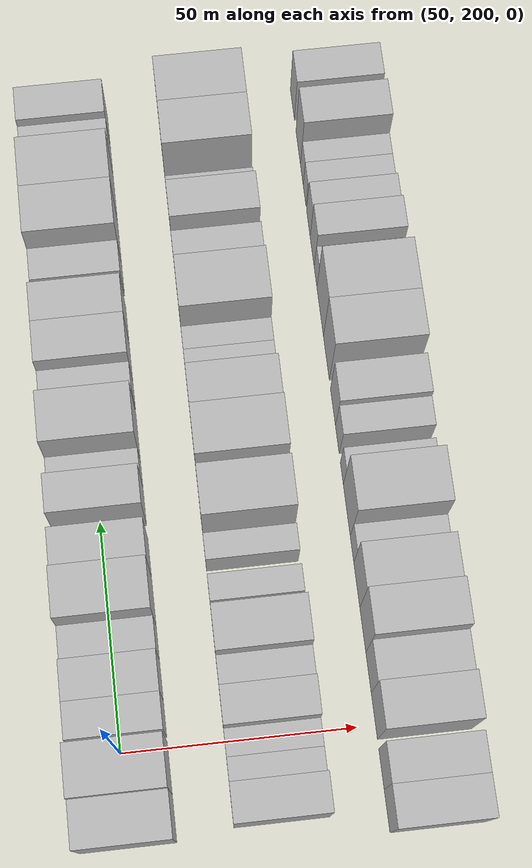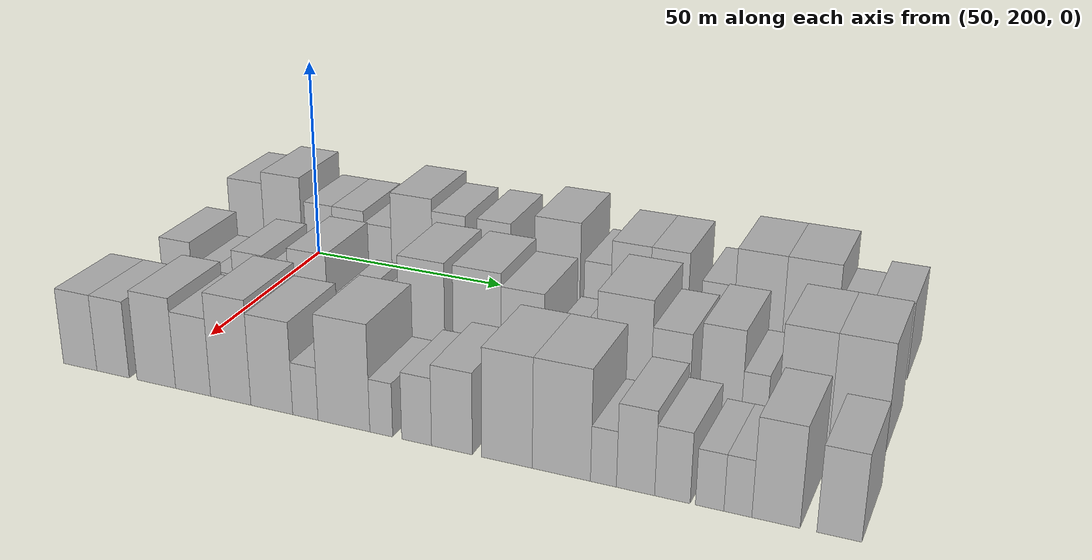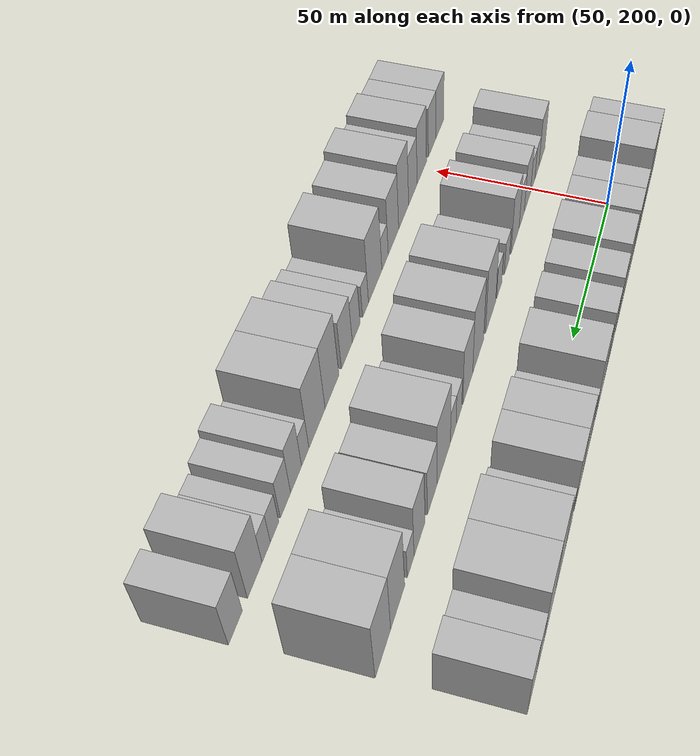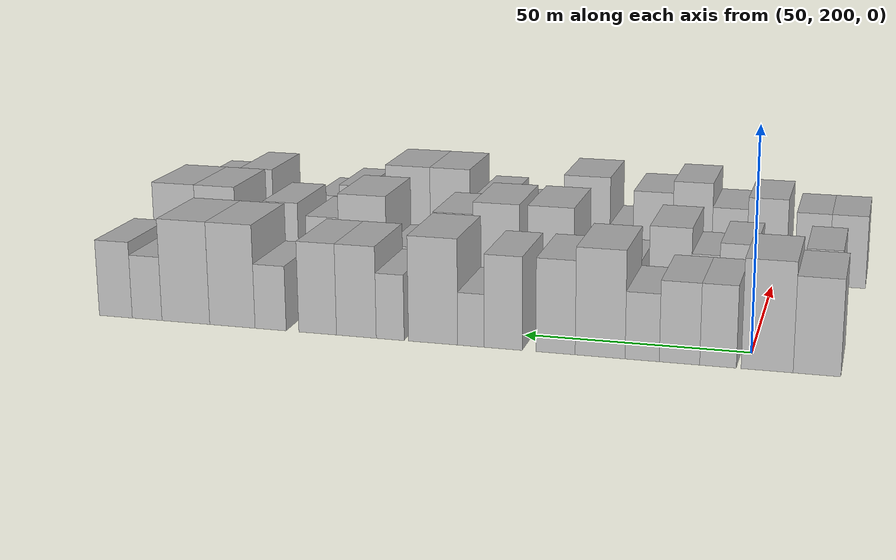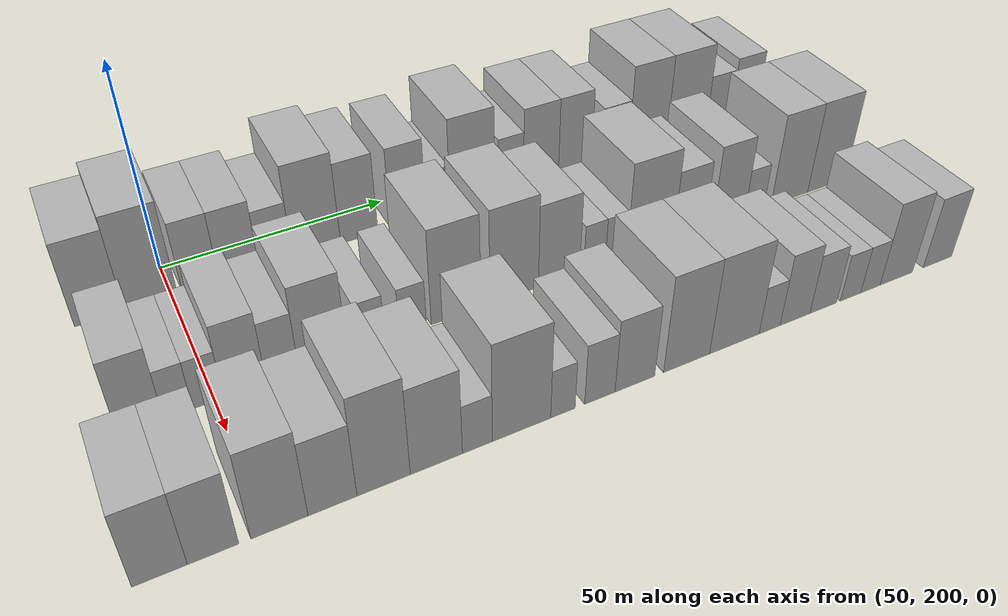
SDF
<sdf version="1.6">
 <world name="default">
  <model name="building_55">
   <static>1</static>
   <pose>50.0000 185.5899 0 0.000000 0.000000 0.000000</pose>
   <link name="link">
    <pose>0 0 10.50 0 0 0</pose>
    <collision name="collision"><geometry><box><size>20.0000 9.7330 21.0000</size></box></geometry></collision>
    <visual name="visual">
     <cast_shadows>0</cast_shadows>
     <geometry><box><size>20.0000 9.7330 21.0000</size></box></geometry>
     <material>
      <script>
       <uri>model://HANNAS_wall/materials/scripts</uri>
       <uri>model://HANNAS_wall/materials/textures</uri>
       <name>vrc/HANNAS_wall</name>
      </script>
     </material>
    </visual>
   </link>
  </model>
  <model name="building_56">
   <static>1</static>
   <pose>50.0000 195.8292 0 0.000000 0.000000 0.000000</pose>
   <link name="link">
    <pose>0 0 12.00 0 0 0</pose>
    <collision name="collision"><geometry><box><size>20.0000 10.7455 24.0000</size></box></geometry></collision>
    <visual name="visual">
     <cast_shadows>0</cast_shadows>
     <geometry><box><size>20.0000 10.7455 24.0000</size></box></geometry>
     <material>
      <script>
       <uri>model://HANNAS_wall/materials/scripts</uri>
       <uri>model://HANNAS_wall/materials/textures</uri>
       <name>vrc/HANNAS_wall</name>
      </script>
     </material>
    </visual>
   </link>
  </model>
  <model name="building_57">
   <static>1</static>
   <pose>50.0000 206.0392 0 0.000000 0.000000 0.000000</pose>
   <link name="link">
    <pose>0 0 9.00 0 0 0</pose>
    <collision name="collision"><geometry><box><size>20.0000 7.6745 18.0000</size></box></geometry></collision>
    <visual name="visual">
     <cast_shadows>0</cast_shadows>
     <geometry><box><size>20.0000 7.6745 18.0000</size></box></geometry>
     <material>
      <script>
       <uri>model://HANNAS_wall/materials/scripts</uri>
       <uri>model://HANNAS_wall/materials/textures</uri>
       <name>vrc/HANNAS_wall</name>
      </script>
     </material>
    </visual>
   </link>
  </model>
  <model name="building_58">
   <static>1</static>
   <pose>50.0000 214.1651 0 0.000000 0.000000 0.000000</pose>
   <link name="link">
    <pose>0 0 9.00 0 0 0</pose>
    <collision name="collision"><geometry><box><size>20.0000 8.5774 18.0000</size></box></geometry></collision>
    <visual name="visual">
     <cast_shadows>0</cast_shadows>
     <geometry><box><size>20.0000 8.5774 18.0000</size></box></geometry>
     <material>
      <script>
       <uri>model://HANNAS_wall/materials/scripts</uri>
       <uri>model://HANNAS_wall/materials/textures</uri>
       <name>vrc/HANNAS_wall</name>
      </script>
     </material>
    </visual>
   </link>
  </model>
  <model name="building_59">
   <static>1</static>
   <pose>50.0000 222.1161 0 0.000000 0.000000 0.000000</pose>
   <link name="link">
    <pose>0 0 7.50 0 0 0</pose>
    <collision name="collision"><geometry><box><size>20.0000 7.3245 15.0000</size></box></geometry></collision>
    <visual name="visual">
     <cast_shadows>0</cast_shadows>
     <geometry><box><size>20.0000 7.3245 15.0000</size></box></geometry>
     <material>
      <script>
       <uri>model://HANNAS_wall/materials/scripts</uri>
       <uri>model://HANNAS_wall/materials/textures</uri>
       <name>vrc/HANNAS_wall</name>
      </script>
     </material>
    </visual>
   </link>
  </model>
  <model name="building_60">
   <static>1</static>
   <pose>50.0000 231.1849 0 0.000000 0.000000 0.000000</pose>
   <link name="link">
    <pose>0 0 12.00 0 0 0</pose>
    <collision name="collision"><geometry><box><size>20.0000 10.8130 24.0000</size></box></geometry></collision>
    <visual name="visual">
     <cast_shadows>0</cast_shadows>
     <geometry><box><size>20.0000 10.8130 24.0000</size></box></geometry>
     <material>
      <script>
       <uri>model://HANNAS_wall/materials/scripts</uri>
       <uri>model://HANNAS_wall/materials/textures</uri>
       <name>vrc/HANNAS_wall</name>
      </script>
     </material>
    </visual>
   </link>
  </model>
  <model name="building_61">
   <static>1</static>
   <pose>50.0000 240.9119 0 0.000000 0.000000 0.000000</pose>
   <link name="link">
    <pose>0 0 10.50 0 0 0</pose>
    <collision name="collision"><geometry><box><size>20.0000 8.6410 21.0000</size></box></geometry></collision>
    <visual name="visual">
     <cast_shadows>0</cast_shadows>
     <geometry><box><size>20.0000 8.6410 21.0000</size></box></geometry>
     <material>
      <script>
       <uri>model://HANNAS_wall/materials/scripts</uri>
       <uri>model://HANNAS_wall/materials/textures</uri>
       <name>vrc/HANNAS_wall</name>
      </script>
     </material>
    </visual>
   </link>
  </model>
  <model name="building_62">
   <static>1</static>
   <pose>50.0000 252.4795 0 0.000000 0.000000 0.000000</pose>
   <link name="link">
    <pose>0 0 10.50 0 0 0</pose>
    <collision name="collision"><geometry><box><size>20.0000 8.4943 21.0000</size></box></geometry></collision>
    <visual name="visual">
     <cast_shadows>0</cast_shadows>
     <geometry><box><size>20.0000 8.4943 21.0000</size></box></geometry>
     <material>
      <script>
       <uri>model://HANNAS_wall/materials/scripts</uri>
       <uri>model://HANNAS_wall/materials/textures</uri>
       <name>vrc/HANNAS_wall</name>
      </script>
     </material>
    </visual>
   </link>
  </model>
  <model name="building_63">
   <static>1</static>
   <pose>50.0000 259.7101 0 0.000000 0.000000 0.000000</pose>
   <link name="link">
    <pose>0 0 6.00 0 0 0</pose>
    <collision name="collision"><geometry><box><size>20.0000 5.9669 12.0000</size></box></geometry></collision>
    <visual name="visual">
     <cast_shadows>0</cast_shadows>
     <geometry><box><size>20.0000 5.9669 12.0000</size></box></geometry>
     <material>
      <script>
       <uri>model://HANNAS_wall/materials/scripts</uri>
       <uri>model://HANNAS_wall/materials/textures</uri>
       <name>vrc/HANNAS_wall</name>
      </script>
     </material>
    </visual>
   </link>
  </model>
  <model name="building_64">
   <static>1</static>
   <pose>50.0000 268.2960 0 0.000000 0.000000 0.000000</pose>
   <link name="link">
    <pose>0 0 12.00 0 0 0</pose>
    <collision name="collision"><geometry><box><size>20.0000 11.2050 24.0000</size></box></geometry></collision>
    <visual name="visual">
     <cast_shadows>0</cast_shadows>
     <geometry><box><size>20.0000 11.2050 24.0000</size></box></geometry>
     <material>
      <script>
       <uri>model://HANNAS_wall/materials/scripts</uri>
       <uri>model://HANNAS_wall/materials/textures</uri>
       <name>vrc/HANNAS_wall</name>
      </script>
     </material>
    </visual>
   </link>
  </model>
  <model name="building_65">
   <static>1</static>
   <pose>50.0000 278.1197 0 0.000000 0.000000 0.000000</pose>
   <link name="link">
    <pose>0 0 7.50 0 0 0</pose>
    <collision name="collision"><geometry><box><size>20.0000 6.4425 15.0000</size></box></geometry></collision>
    <visual name="visual">
     <cast_shadows>0</cast_shadows>
     <geometry><box><size>20.0000 6.4425 15.0000</size></box></geometry>
     <material>
      <script>
       <uri>model://HANNAS_wall/materials/scripts</uri>
       <uri>model://HANNAS_wall/materials/textures</uri>
       <name>vrc/HANNAS_wall</name>
      </script>
     </material>
    </visual>
   </link>
  </model>
  <model name="building_66">
   <static>1</static>
   <pose>50.0000 285.9739 0 0.000000 0.000000 0.000000</pose>
   <link name="link">
    <pose>0 0 10.50 0 0 0</pose>
    <collision name="collision"><geometry><box><size>20.0000 9.2658 21.0000</size></box></geometry></collision>
    <visual name="visual">
     <cast_shadows>0</cast_shadows>
     <geometry><box><size>20.0000 9.2658 21.0000</size></box></geometry>
     <material>
      <script>
       <uri>model://HANNAS_wall/materials/scripts</uri>
       <uri>model://HANNAS_wall/materials/textures</uri>
       <name>vrc/HANNAS_wall</name>
      </script>
     </material>
    </visual>
   </link>
  </model>
  <model name="building_67">
   <static>1</static>
   <pose>50.0000 295.0466 0 0.000000 0.000000 0.000000</pose>
   <link name="link">
    <pose>0 0 10.50 0 0 0</pose>
    <collision name="collision"><geometry><box><size>20.0000 8.8795 21.0000</size></box></geometry></collision>
    <visual name="visual">
     <cast_shadows>0</cast_shadows>
     <geometry><box><size>20.0000 8.8795 21.0000</size></box></geometry>
     <material>
      <script>
       <uri>model://HANNAS_wall/materials/scripts</uri>
       <uri>model://HANNAS_wall/materials/textures</uri>
       <name>vrc/HANNAS_wall</name>
      </script>
     </material>
    </visual>
   </link>
  </model>
  <model name="building_68">
   <static>1</static>
   <pose>50.0000 306.2143 0 0.000000 0.000000 0.000000</pose>
   <link name="link">
    <pose>0 0 7.50 0 0 0</pose>
    <collision name="collision"><geometry><box><size>20.0000 7.4558 15.0000</size></box></geometry></collision>
    <visual name="visual">
     <cast_shadows>0</cast_shadows>
     <geometry><box><size>20.0000 7.4558 15.0000</size></box></geometry>
     <material>
      <script>
       <uri>model://HANNAS_wall/materials/scripts</uri>
       <uri>model://HANNAS_wall/materials/textures</uri>
       <name>vrc/HANNAS_wall</name>
      </script>
     </material>
    </visual>
   </link>
  </model>
  <model name="building_69">
   <static>1</static>
   <pose>50.0000 315.4350 0 0.000000 0.000000 0.000000</pose>
   <link name="link">
    <pose>0 0 12.00 0 0 0</pose>
    <collision name="collision"><geometry><box><size>20.0000 10.9856 24.0000</size></box></geometry></collision>
    <visual name="visual">
     <cast_shadows>0</cast_shadows>
     <geometry><box><size>20.0000 10.9856 24.0000</size></box></geometry>
     <material>
      <script>
       <uri>model://HANNAS_wall/materials/scripts</uri>
       <uri>model://HANNAS_wall/materials/textures</uri>
       <name>vrc/HANNAS_wall</name>
      </script>
     </material>
    </visual>
   </link>
  </model>
  <model name="building_70">
   <static>1</static>
   <pose>50.0000 326.7937 0 0.000000 0.000000 0.000000</pose>
   <link name="link">
    <pose>0 0 12.00 0 0 0</pose>
    <collision name="collision"><geometry><box><size>20.0000 11.7317 24.0000</size></box></geometry></collision>
    <visual name="visual">
     <cast_shadows>0</cast_shadows>
     <geometry><box><size>20.0000 11.7317 24.0000</size></box></geometry>
     <material>
      <script>
       <uri>model://HANNAS_wall/materials/scripts</uri>
       <uri>model://HANNAS_wall/materials/textures</uri>
       <name>vrc/HANNAS_wall</name>
      </script>
     </material>
    </visual>
   </link>
  </model>
  <model name="building_71">
   <static>1</static>
   <pose>50.0000 336.3459 0 0.000000 0.000000 0.000000</pose>
   <link name="link">
    <pose>0 0 7.50 0 0 0</pose>
    <collision name="collision"><geometry><box><size>20.0000 7.3728 15.0000</size></box></geometry></collision>
    <visual name="visual">
     <cast_shadows>0</cast_shadows>
     <geometry><box><size>20.0000 7.3728 15.0000</size></box></geometry>
     <material>
      <script>
       <uri>model://HANNAS_wall/materials/scripts</uri>
       <uri>model://HANNAS_wall/materials/textures</uri>
       <name>vrc/HANNAS_wall</name>
      </script>
     </material>
    </visual>
   </link>
  </model>
  <model name="building_72">
   <static>1</static>
   <pose>50.0000 344.1592 0 0.000000 0.000000 0.000000</pose>
   <link name="link">
    <pose>0 0 9.00 0 0 0</pose>
    <collision name="collision"><geometry><box><size>20.0000 8.2536 18.0000</size></box></geometry></collision>
    <visual name="visual">
     <cast_shadows>0</cast_shadows>
     <geometry><box><size>20.0000 8.2536 18.0000</size></box></geometry>
     <material>
      <script>
       <uri>model://HANNAS_wall/materials/scripts</uri>
       <uri>model://HANNAS_wall/materials/textures</uri>
       <name>vrc/HANNAS_wall</name>
      </script>
     </material>
    </visual>
   </link>
  </model>
  <model name="building_132">
   <static>1</static>
   <pose>82.0000 186.4900 0 0.000000 0.000000 0.000000</pose>
   <link name="link">
    <pose>0 0 9.00 0 0 0</pose>
    <collision name="collision"><geometry><box><size>20.0000 8.2095 18.0000</size></box></geometry></collision>
    <visual name="visual">
     <cast_shadows>0</cast_shadows>
     <geometry><box><size>20.0000 8.2095 18.0000</size></box></geometry>
     <material>
      <script>
       <uri>model://HANNAS_wall/materials/scripts</uri>
       <uri>model://HANNAS_wall/materials/textures</uri>
       <name>vrc/HANNAS_wall</name>
      </script>
     </material>
    </visual>
   </link>
  </model>
  <model name="building_133">
   <static>1</static>
   <pose>82.0000 193.2410 0 0.000000 0.000000 0.000000</pose>
   <link name="link">
    <pose>0 0 6.00 0 0 0</pose>
    <collision name="collision"><geometry><box><size>20.0000 5.2927 12.0000</size></box></geometry></collision>
    <visual name="visual">
     <cast_shadows>0</cast_shadows>
     <geometry><box><size>20.0000 5.2927 12.0000</size></box></geometry>
     <material>
      <script>
       <uri>model://HANNAS_wall/materials/scripts</uri>
       <uri>model://HANNAS_wall/materials/textures</uri>
       <name>vrc/HANNAS_wall</name>
      </script>
     </material>
    </visual>
   </link>
  </model>
  <model name="building_134">
   <static>1</static>
   <pose>82.0000 198.7745 0 0.000000 0.000000 0.000000</pose>
   <link name="link">
    <pose>0 0 6.00 0 0 0</pose>
    <collision name="collision"><geometry><box><size>20.0000 5.7743 12.0000</size></box></geometry></collision>
    <visual name="visual">
     <cast_shadows>0</cast_shadows>
     <geometry><box><size>20.0000 5.7743 12.0000</size></box></geometry>
     <material>
      <script>
       <uri>model://HANNAS_wall/materials/scripts</uri>
       <uri>model://HANNAS_wall/materials/textures</uri>
       <name>vrc/HANNAS_wall</name>
      </script>
     </material>
    </visual>
   </link>
  </model>
  <model name="building_135">
   <static>1</static>
   <pose>82.0000 205.7223 0 0.000000 0.000000 0.000000</pose>
   <link name="link">
    <pose>0 0 9.00 0 0 0</pose>
    <collision name="collision"><geometry><box><size>20.0000 8.1212 18.0000</size></box></geometry></collision>
    <visual name="visual">
     <cast_shadows>0</cast_shadows>
     <geometry><box><size>20.0000 8.1212 18.0000</size></box></geometry>
     <material>
      <script>
       <uri>model://HANNAS_wall/materials/scripts</uri>
       <uri>model://HANNAS_wall/materials/textures</uri>
       <name>vrc/HANNAS_wall</name>
      </script>
     </material>
    </visual>
   </link>
  </model>
  <model name="building_136">
   <static>1</static>
   <pose>82.0000 212.9871 0 0.000000 0.000000 0.000000</pose>
   <link name="link">
    <pose>0 0 7.50 0 0 0</pose>
    <collision name="collision"><geometry><box><size>20.0000 6.4084 15.0000</size></box></geometry></collision>
    <visual name="visual">
     <cast_shadows>0</cast_shadows>
     <geometry><box><size>20.0000 6.4084 15.0000</size></box></geometry>
     <material>
      <script>
       <uri>model://HANNAS_wall/materials/scripts</uri>
       <uri>model://HANNAS_wall/materials/textures</uri>
       <name>vrc/HANNAS_wall</name>
      </script>
     </material>
    </visual>
   </link>
  </model>
  <model name="building_137">
   <static>1</static>
   <pose>82.0000 221.0677 0 0.000000 0.000000 0.000000</pose>
   <link name="link">
    <pose>0 0 10.50 0 0 0</pose>
    <collision name="collision"><geometry><box><size>20.0000 9.7528 21.0000</size></box></geometry></collision>
    <visual name="visual">
     <cast_shadows>0</cast_shadows>
     <geometry><box><size>20.0000 9.7528 21.0000</size></box></geometry>
     <material>
      <script>
       <uri>model://HANNAS_wall/materials/scripts</uri>
       <uri>model://HANNAS_wall/materials/textures</uri>
       <name>vrc/HANNAS_wall</name>
      </script>
     </material>
    </visual>
   </link>
  </model>
  <model name="building_138">
   <static>1</static>
   <pose>82.0000 230.8411 0 0.000000 0.000000 0.000000</pose>
   <link name="link">
    <pose>0 0 6.00 0 0 0</pose>
    <collision name="collision"><geometry><box><size>20.0000 5.7941 12.0000</size></box></geometry></collision>
    <visual name="visual">
     <cast_shadows>0</cast_shadows>
     <geometry><box><size>20.0000 5.7941 12.0000</size></box></geometry>
     <material>
      <script>
       <uri>model://HANNAS_wall/materials/scripts</uri>
       <uri>model://HANNAS_wall/materials/textures</uri>
       <name>vrc/HANNAS_wall</name>
      </script>
     </material>
    </visual>
   </link>
  </model>
  <model name="building_139">
   <static>1</static>
   <pose>82.0000 239.6468 0 0.000000 0.000000 0.000000</pose>
   <link name="link">
    <pose>0 0 6.00 0 0 0</pose>
    <collision name="collision"><geometry><box><size>20.0000 5.8172 12.0000</size></box></geometry></collision>
    <visual name="visual">
     <cast_shadows>0</cast_shadows>
     <geometry><box><size>20.0000 5.8172 12.0000</size></box></geometry>
     <material>
      <script>
       <uri>model://HANNAS_wall/materials/scripts</uri>
       <uri>model://HANNAS_wall/materials/textures</uri>
       <name>vrc/HANNAS_wall</name>
      </script>
     </material>
    </visual>
   </link>
  </model>
  <model name="building_140">
   <static>1</static>
   <pose>82.0000 249.0661 0 0.000000 0.000000 0.000000</pose>
   <link name="link">
    <pose>0 0 12.00 0 0 0</pose>
    <collision name="collision"><geometry><box><size>20.0000 11.0216 24.0000</size></box></geometry></collision>
    <visual name="visual">
     <cast_shadows>0</cast_shadows>
     <geometry><box><size>20.0000 11.0216 24.0000</size></box></geometry>
     <material>
      <script>
       <uri>model://HANNAS_wall/materials/scripts</uri>
       <uri>model://HANNAS_wall/materials/textures</uri>
       <name>vrc/HANNAS_wall</name>
      </script>
     </material>
    </visual>
   </link>
  </model>
  <model name="building_141">
   <static>1</static>
   <pose>82.0000 262.1649 0 0.000000 0.000000 0.000000</pose>
   <link name="link">
    <pose>0 0 12.00 0 0 0</pose>
    <collision name="collision"><geometry><box><size>20.0000 11.1759 24.0000</size></box></geometry></collision>
    <visual name="visual">
     <cast_shadows>0</cast_shadows>
     <geometry><box><size>20.0000 11.1759 24.0000</size></box></geometry>
     <material>
      <script>
       <uri>model://HANNAS_wall/materials/scripts</uri>
       <uri>model://HANNAS_wall/materials/textures</uri>
       <name>vrc/HANNAS_wall</name>
      </script>
     </material>
    </visual>
   </link>
  </model>
  <model name="building_142">
   <static>1</static>
   <pose>82.0000 272.6546 0 0.000000 0.000000 0.000000</pose>
   <link name="link">
    <pose>0 0 10.50 0 0 0</pose>
    <collision name="collision"><geometry><box><size>20.0000 9.8037 21.0000</size></box></geometry></collision>
    <visual name="visual">
     <cast_shadows>0</cast_shadows>
     <geometry><box><size>20.0000 9.8037 21.0000</size></box></geometry>
     <material>
      <script>
       <uri>model://HANNAS_wall/materials/scripts</uri>
       <uri>model://HANNAS_wall/materials/textures</uri>
       <name>vrc/HANNAS_wall</name>
      </script>
     </material>
    </visual>
   </link>
  </model>
  <model name="building_143">
   <static>1</static>
   <pose>82.0000 281.2016 0 0.000000 0.000000 0.000000</pose>
   <link name="link">
    <pose>0 0 6.00 0 0 0</pose>
    <collision name="collision"><geometry><box><size>20.0000 5.2903 12.0000</size></box></geometry></collision>
    <visual name="visual">
     <cast_shadows>0</cast_shadows>
     <geometry><box><size>20.0000 5.2903 12.0000</size></box></geometry>
     <material>
      <script>
       <uri>model://HANNAS_wall/materials/scripts</uri>
       <uri>model://HANNAS_wall/materials/textures</uri>
       <name>vrc/HANNAS_wall</name>
      </script>
     </material>
    </visual>
   </link>
  </model>
  <model name="building_144">
   <static>1</static>
   <pose>82.0000 286.5166 0 0.000000 0.000000 0.000000</pose>
   <link name="link">
    <pose>0 0 6.00 0 0 0</pose>
    <collision name="collision"><geometry><box><size>20.0000 5.3397 12.0000</size></box></geometry></collision>
    <visual name="visual">
     <cast_shadows>0</cast_shadows>
     <geometry><box><size>20.0000 5.3397 12.0000</size></box></geometry>
     <material>
      <script>
       <uri>model://HANNAS_wall/materials/scripts</uri>
       <uri>model://HANNAS_wall/materials/textures</uri>
       <name>vrc/HANNAS_wall</name>
      </script>
     </material>
    </visual>
   </link>
  </model>
  <model name="building_145">
   <static>1</static>
   <pose>82.0000 295.1687 0 0.000000 0.000000 0.000000</pose>
   <link name="link">
    <pose>0 0 12.00 0 0 0</pose>
    <collision name="collision"><geometry><box><size>20.0000 11.9644 24.0000</size></box></geometry></collision>
    <visual name="visual">
     <cast_shadows>0</cast_shadows>
     <geometry><box><size>20.0000 11.9644 24.0000</size></box></geometry>
     <material>
      <script>
       <uri>model://HANNAS_wall/materials/scripts</uri>
       <uri>model://HANNAS_wall/materials/textures</uri>
       <name>vrc/HANNAS_wall</name>
      </script>
     </material>
    </visual>
   </link>
  </model>
  <model name="building_146">
   <static>1</static>
   <pose>82.0000 305.3012 0 0.000000 0.000000 0.000000</pose>
   <link name="link">
    <pose>0 0 9.00 0 0 0</pose>
    <collision name="collision"><geometry><box><size>20.0000 8.3006 18.0000</size></box></geometry></collision>
    <visual name="visual">
     <cast_shadows>0</cast_shadows>
     <geometry><box><size>20.0000 8.3006 18.0000</size></box></geometry>
     <material>
      <script>
       <uri>model://HANNAS_wall/materials/scripts</uri>
       <uri>model://HANNAS_wall/materials/textures</uri>
       <name>vrc/HANNAS_wall</name>
      </script>
     </material>
    </visual>
   </link>
  </model>
  <model name="building_147">
   <static>1</static>
   <pose>82.0000 315.8851 0 0.000000 0.000000 0.000000</pose>
   <link name="link">
    <pose>0 0 10.50 0 0 0</pose>
    <collision name="collision"><geometry><box><size>20.0000 8.8671 21.0000</size></box></geometry></collision>
    <visual name="visual">
     <cast_shadows>0</cast_shadows>
     <geometry><box><size>20.0000 8.8671 21.0000</size></box></geometry>
     <material>
      <script>
       <uri>model://HANNAS_wall/materials/scripts</uri>
       <uri>model://HANNAS_wall/materials/textures</uri>
       <name>vrc/HANNAS_wall</name>
      </script>
     </material>
    </visual>
   </link>
  </model>
  <model name="building_148">
   <static>1</static>
   <pose>82.0000 322.9834 0 0.000000 0.000000 0.000000</pose>
   <link name="link">
    <pose>0 0 6.00 0 0 0</pose>
    <collision name="collision"><geometry><box><size>20.0000 5.3293 12.0000</size></box></geometry></collision>
    <visual name="visual">
     <cast_shadows>0</cast_shadows>
     <geometry><box><size>20.0000 5.3293 12.0000</size></box></geometry>
     <material>
      <script>
       <uri>model://HANNAS_wall/materials/scripts</uri>
       <uri>model://HANNAS_wall/materials/textures</uri>
       <name>vrc/HANNAS_wall</name>
      </script>
     </material>
    </visual>
   </link>
  </model>
  <model name="building_149">
   <static>1</static>
   <pose>82.0000 332.9138 0 0.000000 0.000000 0.000000</pose>
   <link name="link">
    <pose>0 0 12.00 0 0 0</pose>
    <collision name="collision"><geometry><box><size>20.0000 10.5316 24.0000</size></box></geometry></collision>
    <visual name="visual">
     <cast_shadows>0</cast_shadows>
     <geometry><box><size>20.0000 10.5316 24.0000</size></box></geometry>
     <material>
      <script>
       <uri>model://HANNAS_wall/materials/scripts</uri>
       <uri>model://HANNAS_wall/materials/textures</uri>
       <name>vrc/HANNAS_wall</name>
      </script>
     </material>
    </visual>
   </link>
  </model>
  <model name="building_150">
   <static>1</static>
   <pose>82.0000 343.7231 0 0.000000 0.000000 0.000000</pose>
   <link name="link">
    <pose>0 0 12.00 0 0 0</pose>
    <collision name="collision"><geometry><box><size>20.0000 11.0872 24.0000</size></box></geometry></collision>
    <visual name="visual">
     <cast_shadows>0</cast_shadows>
     <geometry><box><size>20.0000 11.0872 24.0000</size></box></geometry>
     <material>
      <script>
       <uri>model://HANNAS_wall/materials/scripts</uri>
       <uri>model://HANNAS_wall/materials/textures</uri>
       <name>vrc/HANNAS_wall</name>
      </script>
     </material>
    </visual>
   </link>
  </model>
  <model name="building_211">
   <static>1</static>
   <pose>114.0000 182.2559 0 0.000000 0.000000 0.000000</pose>
   <link name="link">
    <pose>0 0 9.00 0 0 0</pose>
    <collision name="collision"><geometry><box><size>20.0000 8.7632 18.0000</size></box></geometry></collision>
    <visual name="visual">
     <cast_shadows>0</cast_shadows>
     <geometry><box><size>20.0000 8.7632 18.0000</size></box></geometry>
     <material>
      <script>
       <uri>model://HANNAS_wall/materials/scripts</uri>
       <uri>model://HANNAS_wall/materials/textures</uri>
       <name>vrc/HANNAS_wall</name>
      </script>
     </material>
    </visual>
   </link>
  </model>
  <model name="building_212">
   <static>1</static>
   <pose>114.0000 190.8251 0 0.000000 0.000000 0.000000</pose>
   <link name="link">
    <pose>0 0 9.00 0 0 0</pose>
    <collision name="collision"><geometry><box><size>20.0000 8.3752 18.0000</size></box></geometry></collision>
    <visual name="visual">
     <cast_shadows>0</cast_shadows>
     <geometry><box><size>20.0000 8.3752 18.0000</size></box></geometry>
     <material>
      <script>
       <uri>model://HANNAS_wall/materials/scripts</uri>
       <uri>model://HANNAS_wall/materials/textures</uri>
       <name>vrc/HANNAS_wall</name>
      </script>
     </material>
    </visual>
   </link>
  </model>
  <model name="building_213">
   <static>1</static>
   <pose>114.0000 201.8825 0 0.000000 0.000000 0.000000</pose>
   <link name="link">
    <pose>0 0 10.50 0 0 0</pose>
    <collision name="collision"><geometry><box><size>20.0000 9.7396 21.0000</size></box></geometry></collision>
    <visual name="visual">
     <cast_shadows>0</cast_shadows>
     <geometry><box><size>20.0000 9.7396 21.0000</size></box></geometry>
     <material>
      <script>
       <uri>model://HANNAS_wall/materials/scripts</uri>
       <uri>model://HANNAS_wall/materials/textures</uri>
       <name>vrc/HANNAS_wall</name>
      </script>
     </material>
    </visual>
   </link>
  </model>
  <model name="building_214">
   <static>1</static>
   <pose>114.0000 211.0773 0 0.000000 0.000000 0.000000</pose>
   <link name="link">
    <pose>0 0 9.00 0 0 0</pose>
    <collision name="collision"><geometry><box><size>20.0000 8.6499 18.0000</size></box></geometry></collision>
    <visual name="visual">
     <cast_shadows>0</cast_shadows>
     <geometry><box><size>20.0000 8.6499 18.0000</size></box></geometry>
     <material>
      <script>
       <uri>model://HANNAS_wall/materials/scripts</uri>
       <uri>model://HANNAS_wall/materials/textures</uri>
       <name>vrc/HANNAS_wall</name>
      </script>
     </material>
    </visual>
   </link>
  </model>
  <model name="building_215">
   <static>1</static>
   <pose>114.0000 220.2819 0 0.000000 0.000000 0.000000</pose>
   <link name="link">
    <pose>0 0 12.00 0 0 0</pose>
    <collision name="collision"><geometry><box><size>20.0000 9.7593 24.0000</size></box></geometry></collision>
    <visual name="visual">
     <cast_shadows>0</cast_shadows>
     <geometry><box><size>20.0000 9.7593 24.0000</size></box></geometry>
     <material>
      <script>
       <uri>model://HANNAS_wall/materials/scripts</uri>
       <uri>model://HANNAS_wall/materials/textures</uri>
       <name>vrc/HANNAS_wall</name>
      </script>
     </material>
    </visual>
   </link>
  </model>
  <model name="building_216">
   <static>1</static>
   <pose>114.0000 230.1142 0 0.000000 0.000000 0.000000</pose>
   <link name="link">
    <pose>0 0 10.50 0 0 0</pose>
    <collision name="collision"><geometry><box><size>20.0000 9.9053 21.0000</size></box></geometry></collision>
    <visual name="visual">
     <cast_shadows>0</cast_shadows>
     <geometry><box><size>20.0000 9.9053 21.0000</size></box></geometry>
     <material>
      <script>
       <uri>model://HANNAS_wall/materials/scripts</uri>
       <uri>model://HANNAS_wall/materials/textures</uri>
       <name>vrc/HANNAS_wall</name>
      </script>
     </material>
    </visual>
   </link>
  </model>
  <model name="building_217">
   <static>1</static>
   <pose>114.0000 238.0025 0 0.000000 0.000000 0.000000</pose>
   <link name="link">
    <pose>0 0 6.00 0 0 0</pose>
    <collision name="collision"><geometry><box><size>20.0000 5.8713 12.0000</size></box></geometry></collision>
    <visual name="visual">
     <cast_shadows>0</cast_shadows>
     <geometry><box><size>20.0000 5.8713 12.0000</size></box></geometry>
     <material>
      <script>
       <uri>model://HANNAS_wall/materials/scripts</uri>
       <uri>model://HANNAS_wall/materials/textures</uri>
       <name>vrc/HANNAS_wall</name>
      </script>
     </material>
    </visual>
   </link>
  </model>
  <model name="building_218">
   <static>1</static>
   <pose>114.0000 246.8451 0 0.000000 0.000000 0.000000</pose>
   <link name="link">
    <pose>0 0 12.00 0 0 0</pose>
    <collision name="collision"><geometry><box><size>20.0000 11.8139 24.0000</size></box></geometry></collision>
    <visual name="visual">
     <cast_shadows>0</cast_shadows>
     <geometry><box><size>20.0000 11.8139 24.0000</size></box></geometry>
     <material>
      <script>
       <uri>model://HANNAS_wall/materials/scripts</uri>
       <uri>model://HANNAS_wall/materials/textures</uri>
       <name>vrc/HANNAS_wall</name>
      </script>
     </material>
    </visual>
   </link>
  </model>
  <model name="building_219">
   <static>1</static>
   <pose>114.0000 255.3041 0 0.000000 0.000000 0.000000</pose>
   <link name="link">
    <pose>0 0 6.00 0 0 0</pose>
    <collision name="collision"><geometry><box><size>20.0000 5.1041 12.0000</size></box></geometry></collision>
    <visual name="visual">
     <cast_shadows>0</cast_shadows>
     <geometry><box><size>20.0000 5.1041 12.0000</size></box></geometry>
     <material>
      <script>
       <uri>model://HANNAS_wall/materials/scripts</uri>
       <uri>model://HANNAS_wall/materials/textures</uri>
       <name>vrc/HANNAS_wall</name>
      </script>
     </material>
    </visual>
   </link>
  </model>
  <model name="building_220">
   <static>1</static>
   <pose>114.0000 263.1260 0 0.000000 0.000000 0.000000</pose>
   <link name="link">
    <pose>0 0 7.50 0 0 0</pose>
    <collision name="collision"><geometry><box><size>20.0000 6.5396 15.0000</size></box></geometry></collision>
    <visual name="visual">
     <cast_shadows>0</cast_shadows>
     <geometry><box><size>20.0000 6.5396 15.0000</size></box></geometry>
     <material>
      <script>
       <uri>model://HANNAS_wall/materials/scripts</uri>
       <uri>model://HANNAS_wall/materials/textures</uri>
       <name>vrc/HANNAS_wall</name>
      </script>
     </material>
    </visual>
   </link>
  </model>
  <model name="building_221">
   <static>1</static>
   <pose>114.0000 270.7775 0 0.000000 0.000000 0.000000</pose>
   <link name="link">
    <pose>0 0 9.00 0 0 0</pose>
    <collision name="collision"><geometry><box><size>20.0000 8.7636 18.0000</size></box></geometry></collision>
    <visual name="visual">
     <cast_shadows>0</cast_shadows>
     <geometry><box><size>20.0000 8.7636 18.0000</size></box></geometry>
     <material>
      <script>
       <uri>model://HANNAS_wall/materials/scripts</uri>
       <uri>model://HANNAS_wall/materials/textures</uri>
       <name>vrc/HANNAS_wall</name>
      </script>
     </material>
    </visual>
   </link>
  </model>
  <model name="building_222">
   <static>1</static>
   <pose>114.0000 282.4480 0 0.000000 0.000000 0.000000</pose>
   <link name="link">
    <pose>0 0 12.00 0 0 0</pose>
    <collision name="collision"><geometry><box><size>20.0000 10.5774 24.0000</size></box></geometry></collision>
    <visual name="visual">
     <cast_shadows>0</cast_shadows>
     <geometry><box><size>20.0000 10.5774 24.0000</size></box></geometry>
     <material>
      <script>
       <uri>model://HANNAS_wall/materials/scripts</uri>
       <uri>model://HANNAS_wall/materials/textures</uri>
       <name>vrc/HANNAS_wall</name>
      </script>
     </material>
    </visual>
   </link>
  </model>
  <model name="building_223">
   <static>1</static>
   <pose>114.0000 293.6630 0 0.000000 0.000000 0.000000</pose>
   <link name="link">
    <pose>0 0 12.00 0 0 0</pose>
    <collision name="collision"><geometry><box><size>20.0000 11.8526 24.0000</size></box></geometry></collision>
    <visual name="visual">
     <cast_shadows>0</cast_shadows>
     <geometry><box><size>20.0000 11.8526 24.0000</size></box></geometry>
     <material>
      <script>
       <uri>model://HANNAS_wall/materials/scripts</uri>
       <uri>model://HANNAS_wall/materials/textures</uri>
       <name>vrc/HANNAS_wall</name>
      </script>
     </material>
    </visual>
   </link>
  </model>
  <model name="building_224">
   <static>1</static>
   <pose>114.0000 302.1726 0 0.000000 0.000000 0.000000</pose>
   <link name="link">
    <pose>0 0 6.00 0 0 0</pose>
    <collision name="collision"><geometry><box><size>20.0000 5.1666 12.0000</size></box></geometry></collision>
    <visual name="visual">
     <cast_shadows>0</cast_shadows>
     <geometry><box><size>20.0000 5.1666 12.0000</size></box></geometry>
     <material>
      <script>
       <uri>model://HANNAS_wall/materials/scripts</uri>
       <uri>model://HANNAS_wall/materials/textures</uri>
       <name>vrc/HANNAS_wall</name>
      </script>
     </material>
    </visual>
   </link>
  </model>
  <model name="building_225">
   <static>1</static>
   <pose>114.0000 308.5087 0 0.000000 0.000000 0.000000</pose>
   <link name="link">
    <pose>0 0 9.00 0 0 0</pose>
    <collision name="collision"><geometry><box><size>20.0000 7.5056 18.0000</size></box></geometry></collision>
    <visual name="visual">
     <cast_shadows>0</cast_shadows>
     <geometry><box><size>20.0000 7.5056 18.0000</size></box></geometry>
     <material>
      <script>
       <uri>model://HANNAS_wall/materials/scripts</uri>
       <uri>model://HANNAS_wall/materials/textures</uri>
       <name>vrc/HANNAS_wall</name>
      </script>
     </material>
    </visual>
   </link>
  </model>
  <model name="building_226">
   <static>1</static>
   <pose>114.0000 315.6885 0 0.000000 0.000000 0.000000</pose>
   <link name="link">
    <pose>0 0 7.50 0 0 0</pose>
    <collision name="collision"><geometry><box><size>20.0000 6.8538 15.0000</size></box></geometry></collision>
    <visual name="visual">
     <cast_shadows>0</cast_shadows>
     <geometry><box><size>20.0000 6.8538 15.0000</size></box></geometry>
     <material>
      <script>
       <uri>model://HANNAS_wall/materials/scripts</uri>
       <uri>model://HANNAS_wall/materials/textures</uri>
       <name>vrc/HANNAS_wall</name>
      </script>
     </material>
    </visual>
   </link>
  </model>
  <model name="building_227">
   <static>1</static>
   <pose>114.0000 322.8114 0 0.000000 0.000000 0.000000</pose>
   <link name="link">
    <pose>0 0 6.00 0 0 0</pose>
    <collision name="collision"><geometry><box><size>20.0000 5.3921 12.0000</size></box></geometry></collision>
    <visual name="visual">
     <cast_shadows>0</cast_shadows>
     <geometry><box><size>20.0000 5.3921 12.0000</size></box></geometry>
     <material>
      <script>
       <uri>model://HANNAS_wall/materials/scripts</uri>
       <uri>model://HANNAS_wall/materials/textures</uri>
       <name>vrc/HANNAS_wall</name>
      </script>
     </material>
    </visual>
   </link>
  </model>
  <model name="building_228">
   <static>1</static>
   <pose>114.0000 328.1126 0 0.000000 0.000000 0.000000</pose>
   <link name="link">
    <pose>0 0 6.00 0 0 0</pose>
    <collision name="collision"><geometry><box><size>20.0000 5.2102 12.0000</size></box></geometry></collision>
    <visual name="visual">
     <cast_shadows>0</cast_shadows>
     <geometry><box><size>20.0000 5.2102 12.0000</size></box></geometry>
     <material>
      <script>
       <uri>model://HANNAS_wall/materials/scripts</uri>
       <uri>model://HANNAS_wall/materials/textures</uri>
       <name>vrc/HANNAS_wall</name>
      </script>
     </material>
    </visual>
   </link>
  </model>
  <model name="building_229">
   <static>1</static>
   <pose>114.0000 335.1477 0 0.000000 0.000000 0.000000</pose>
   <link name="link">
    <pose>0 0 10.50 0 0 0</pose>
    <collision name="collision"><geometry><box><size>20.0000 8.8600 21.0000</size></box></geometry></collision>
    <visual name="visual">
     <cast_shadows>0</cast_shadows>
     <geometry><box><size>20.0000 8.8600 21.0000</size></box></geometry>
     <material>
      <script>
       <uri>model://HANNAS_wall/materials/scripts</uri>
       <uri>model://HANNAS_wall/materials/textures</uri>
       <name>vrc/HANNAS_wall</name>
      </script>
     </material>
    </visual>
   </link>
  </model>
  <model name="building_230">
   <static>1</static>
   <pose>114.0000 346.6071 0 0.000000 0.000000 0.000000</pose>
   <link name="link">
    <pose>0 0 9.00 0 0 0</pose>
    <collision name="collision"><geometry><box><size>20.0000 8.0589 18.0000</size></box></geometry></collision>
    <visual name="visual">
     <cast_shadows>0</cast_shadows>
     <geometry><box><size>20.0000 8.0589 18.0000</size></box></geometry>
     <material>
      <script>
       <uri>model://HANNAS_wall/materials/scripts</uri>
       <uri>model://HANNAS_wall/materials/textures</uri>
       <name>vrc/HANNAS_wall</name>
      </script>
     </material>
    </visual>
   </link>
  </model>
 </world>
</sdf>
